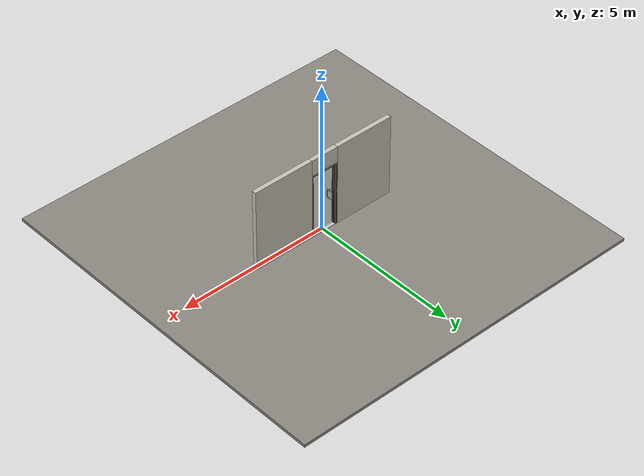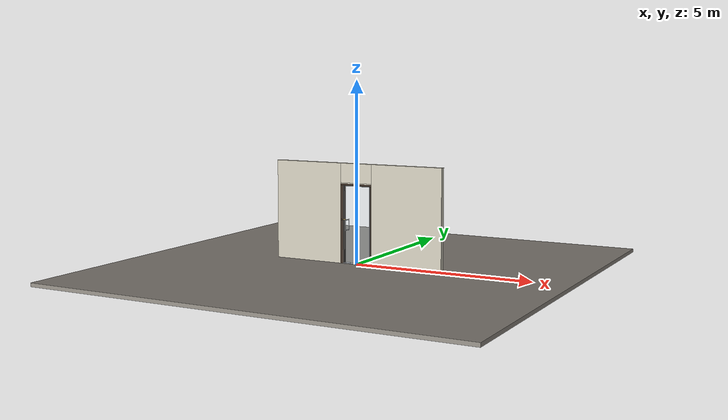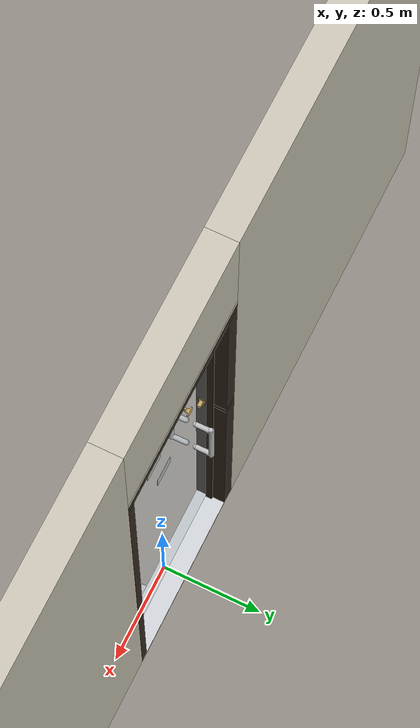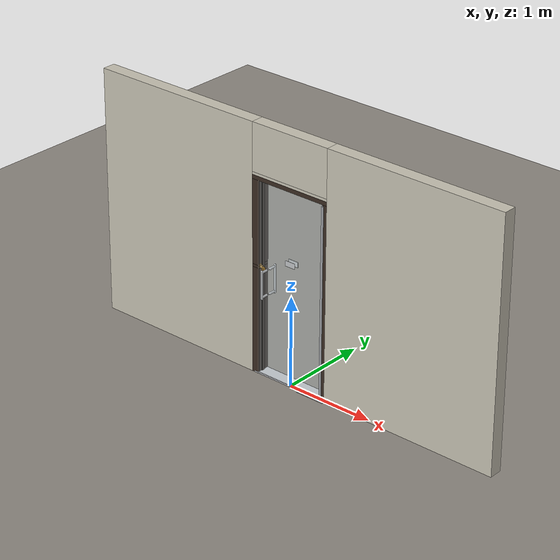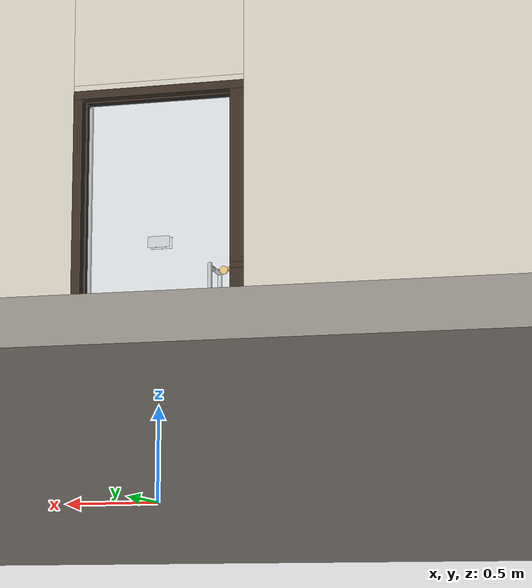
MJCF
<?xml version="1.0" ?>
<mujoco model="db0816_swing_single_full">
  <compiler angle="radian" meshdir="../../hardware" texturedir="../../textures" autolimits="true" inertiafromgeom="false"/>
  <option timestep="0.002" integrator="implicitfast" cone="elliptic" impratio="10" noslip_iterations="3">
    <flag multiccd="enable"/>
  </option>
  <size memory="16M"/>
  <default>
    <geom condim="4" solref="0.005 1" solimp="0.95 0.99 0.001"/>
    <joint solreflimit="0.005 1" solimplimit="0.95 0.99 0.001"/>
    <tendon solreflimit="0.005 1"/>
    <equality solref="0.002 1"/>
  </default>
  <visual>
    <headlight ambient="0.4 0.4 0.4" diffuse="0.7 0.7 0.7" specular="0.2 0.2 0.2"/>
    <quality shadowsize="4096"/>
    <map znear="0.01" zfar="60"/>
  </visual>
  <asset>
    <mesh name="pull_f8d79d6331" file="pull_f8d79d6331.obj"/>
    <mesh name="thumbturn_eb5c9899a3" file="thumbturn_eb5c9899a3.obj"/>
    <material name="mat_floor" rgba="0.55 0.53 0.5 1" specular="0.2" shininess="0.15" reflectance="0"/>
    <material name="mat_wall" rgba="0.78 0.76 0.7 1" specular="0.2" shininess="0.1" reflectance="0"/>
    <material name="mat_leaf" rgba="0.85 0.92 0.95 0.25" specular="0.2" shininess="0.95" reflectance="0.1"/>
    <material name="mat_glass_leaf" rgba="0.85 0.92 0.95 0.25" specular="0.2" shininess="0.95" reflectance="0.1"/>
    <material name="mat_patch" rgba="0.75 0.76 0.77 1" specular="0.8" shininess="0.65" reflectance="0.4"/>
    <material name="mat_hinge" rgba="0.65 0.66 0.68 1" specular="0.74" shininess="0.5" reflectance="0.36"/>
    <material name="mat_op_stainless" rgba="0.75 0.76 0.77 1" specular="0.8" shininess="0.65" reflectance="0.4"/>
    <material name="mat_deadbolt" rgba="0.85 0.66 0.3 1" specular="0.8" shininess="0.75" reflectance="0.4"/>
    <material name="mat_frame" rgba="0.22 0.17 0.13 1" specular="0.8" shininess="0.6" reflectance="0.4"/>
    <material name="mat_seal" rgba="0.1 0.1 0.1 1" specular="0.2" shininess="0.1" reflectance="0"/>
    <material name="mat_threshold" rgba="0.8 0.81 0.83 1" specular="0.8" shininess="0.6" reflectance="0.4"/>
    <material name="mat_closer" rgba="0.75 0.76 0.77 1" specular="0.8" shininess="0.65" reflectance="0.4"/>
    <material name="mat_sign" rgba="0.75 0.76 0.77 1" specular="0.8" shininess="0.65" reflectance="0.4"/>
    <texture name="skybox" type="skybox" builtin="gradient" rgb1="0.6 0.7 0.85" rgb2="0.9 0.92 0.95" width="256" height="256"/>
  </asset>
  <worldbody>
    <light name="sun" pos="1.5 -2.5 4" dir="-0.3 0.5 -0.8" directional="true" diffuse="0.8 0.8 0.8" specular="0.3 0.3 0.3" castshadow="true"/>
    <light name="fill" pos="-1.5 2.5 3" dir="0.3 -0.5 -0.7" directional="true" diffuse="0.35 0.35 0.4" castshadow="false"/>
    <camera name="robot_view" pos="0 -2.594812 1.812087" xyaxes="1 0 0 0 0.26963 0.962964" fovy="52"/>
    <camera name="far_view" pos="0 2.680813 1.812087" xyaxes="-1 0 0 0 -0.26963 0.962964" fovy="52"/>
    <camera name="iso" pos="-2.004737 -2.172762 2.234138" xyaxes="0.741536 -0.670913 0 0.242917 0.268487 0.932151" fovy="46"/>
    <camera name="detail_handle" pos="-0.1205 -0.8975 1.347" xyaxes="0.97561 0.219512 0 -0.070934 0.315262 0.94635" fovy="38"/>
    <geom name="floor" type="box" size="6 6 0.05" pos="0 0 -0.05" material="mat_floor" group="0" contype="1" conaffinity="1" friction="0.8 0.005 0.0001" density="2400"/>
    <geom name="wall_left" type="box" size="1.00725 0.0725 1.3735" pos="-1.49275 0.043 1.3735" material="mat_wall" group="0" contype="1" conaffinity="1" friction="0.6 0.005 0.0001" density="800"/>
    <geom name="wall_right" type="box" size="1.02225 0.0725 1.3735" pos="1.47775 0.043 1.3735" material="mat_wall" group="0" contype="1" conaffinity="1" friction="0.6 0.005 0.0001" density="800"/>
    <geom name="wall_header" type="box" size="0.4705 0.0725 0.2625" pos="-0.015 0.043 2.4845" material="mat_wall" group="0" contype="1" conaffinity="1" friction="0.6 0.005 0.0001" density="800"/>
    <geom name="leaf_deadbolt_strike_b" type="box" size="0.0155 0.003 0.0005" pos="-0.41 0 1.1885" quat="0.5 0.5 0.5 0.5" material="mat_deadbolt" group="1" contype="0" conaffinity="0" density="7800"/>
    <geom name="leaf_deadbolt_strike_l" type="box" size="0.003 0.0155 0.0005" pos="-0.41 -0.0125 1.207" quat="0.5 0.5 0.5 0.5" material="mat_deadbolt" group="1" contype="0" conaffinity="0" density="7800"/>
    <geom name="leaf_deadbolt_strike_t" type="box" size="0.0155 0.003 0.0005" pos="-0.41 0 1.2255" quat="0.5 0.5 0.5 0.5" material="mat_deadbolt" group="1" contype="0" conaffinity="0" density="7800"/>
    <geom name="leaf_deadbolt_strike_r" type="box" size="0.003 0.0155 0.0005" pos="-0.41 0.0125 1.207" quat="0.5 0.5 0.5 0.5" material="mat_deadbolt" group="1" contype="0" conaffinity="0" density="7800"/>
    <geom name="jamb_hinge" type="box" size="0.0225 0.0725 1.0735" pos="0.433 0.043 1.0735" material="mat_frame" group="0" contype="1" conaffinity="1" friction="0.6 0.005 0.0001" density="300"/>
    <geom name="strike_1207_wall_n" type="box" size="0.0375 0.053 0.0155" pos="-0.448 0.0625 1.207" material="mat_frame" group="0" contype="1" conaffinity="1" friction="0.6 0.005 0.0001" density="300"/>
    <geom name="strike_1207_wall_p" type="box" size="0.0375 0.01 0.0155" pos="-0.448 -0.0195 1.207" material="mat_frame" group="0" contype="1" conaffinity="1" friction="0.6 0.005 0.0001" density="300"/>
    <geom name="strike_1207_back" type="box" size="0.0228 0.0095 0.0155" pos="-0.4627 0 1.207" material="mat_frame" group="0" contype="1" conaffinity="1" friction="0.6 0.005 0.0001" density="300"/>
    <geom name="jamb_strike_0" type="box" size="0.0375 0.0725 0.59575" pos="-0.448 0.043 0.59575" material="mat_frame" group="0" contype="1" conaffinity="1" friction="0.6 0.005 0.0001" density="300"/>
    <geom name="jamb_strike_1" type="box" size="0.0375 0.0725 0.46225" pos="-0.448 0.043 1.68475" material="mat_frame" group="0" contype="1" conaffinity="1" friction="0.6 0.005 0.0001" density="300"/>
    <geom name="jamb_head" type="box" size="0.4705 0.0725 0.0225" pos="-0.015 0.043 2.1695" material="mat_frame" group="0" contype="1" conaffinity="1" friction="0.6 0.005 0.0001" density="300"/>
    <geom name="head_stud" type="box" size="0.4705 0.0725 0.015" pos="-0.015 0.043 2.207" material="mat_wall" group="0" contype="1" conaffinity="1" friction="0.6 0.005 0.0001" density="500"/>
    <geom name="stop_hinge" type="box" size="0.0055 0.016 1.0735" pos="0.405 0.039 1.0735" material="mat_frame" group="0" contype="1" conaffinity="1" friction="0.6 0.005 0.0001" density="300"/>
    <geom name="stop_strike" type="box" size="0.0055 0.016 1.0735" pos="-0.405 0.039 1.0735" material="mat_frame" group="0" contype="1" conaffinity="1" friction="0.6 0.005 0.0001" density="300"/>
    <geom name="stop_head" type="box" size="0.4105 0.016 0.0055" pos="0 0.039 2.1415" material="mat_frame" group="0" contype="1" conaffinity="1" friction="0.6 0.005 0.0001" density="300"/>
    <geom name="seal_hinge" type="box" size="0.004 0.002 1.0735" pos="0.4075 0.0245 1.0735" material="mat_seal" group="1" contype="0" conaffinity="0" density="1100"/>
    <geom name="seal_strike" type="box" size="0.004 0.002 1.0735" pos="-0.4075 0.0245 1.0735" material="mat_seal" group="1" contype="0" conaffinity="0" density="1100"/>
    <geom name="seal_head" type="box" size="0.3905 0.002 0.008" pos="0 0.0245 2.135" material="mat_seal" group="1" contype="0" conaffinity="0" density="1100"/>
    <geom name="threshold" type="box" size="0.4555 0.0725 0.0065" pos="0 0.043 0.0065" material="mat_threshold" group="0" contype="1" conaffinity="1" friction="0.5 0.005 0.0001" density="2700"/>
    <geom name="floor_spring_cover" type="box" size="0.17 0.06 0.002" pos="0.2905 0 0.002" material="mat_closer" group="1" contype="0" conaffinity="0" density="7900"/>
    <site name="approach_point" pos="0 -1.5 0" quat="1 0 0 0" size="0.05" rgba="0.2 0.9 0.2 0.5" group="4"/>
    <site name="goal_point" pos="0 1.5 0" quat="1 0 0 0" size="0.05" rgba="0.2 0.9 0.2 0.5" group="4"/>
    <site name="door_plane_center" pos="0 0 1.0735" quat="1 0 0 0" size="0.02" rgba="0.2 0.9 0.2 0.5" group="4"/>
    <body name="leaf" pos="0.4105 0 0">
      <inertial pos="-0.400927 -0.001328 1.080498" mass="88.081347" quat="0.50227 0.497904 -0.502085 0.497722" diaginertia="5.410505238 32.063966319 37.394522179"/>
      <joint name="leaf_hinge" type="hinge" axis="0 0 1" pos="-0.003 -0.0295 0" limited="true" range="0 1.832596" solreflimit="0.02 1" damping="8.168374" frictionloss="1.966204" stiffness="17.118706" springref="-2.550426" armature="0.02"/>
      <geom name="leaf_glass" type="box" size="0.4065 0.0225 1.063" pos="-0.4095 0 1.08" material="mat_glass_leaf" group="0" contype="1" conaffinity="1" friction="0.4 0.005 0.0001" density="1"/>
      <geom name="hinge_continuous" type="cylinder" size="0.0136 1.053" pos="-0.003 -0.0295 1.08" material="mat_hinge" group="1" contype="0" conaffinity="0" density="2700"/>
      <geom name="leaf_pull_n" type="mesh" mesh="pull_f8d79d6331" pos="-0.711 -0.0225 1.067" quat="0 0 -0.707107 0.707107" material="mat_op_stainless" group="1" contype="0" conaffinity="0" density="3000"/>
      <geom name="leaf_pull_col_n" type="capsule" size="0.0125 0.13" pos="-0.711 -0.0975 1.067" material="mat_op_stainless" group="3" contype="1" conaffinity="1" rgba="0.8 0.3 0.3 0.25" friction="0.7 0.01 0.0001" density="3000"/>
      <geom name="leaf_pull_p" type="mesh" mesh="pull_f8d79d6331" pos="-0.711 0.0225 1.067" quat="0 0 0.707107 0.707107" material="mat_op_stainless" group="1" contype="0" conaffinity="0" density="3000"/>
      <geom name="leaf_pull_col_p" type="capsule" size="0.0125 0.13" pos="-0.711 0.0975 1.067" material="mat_op_stainless" group="3" contype="1" conaffinity="1" rgba="0.8 0.3 0.3 0.25" friction="0.7 0.01 0.0001" density="3000"/>
      <geom name="leaf_deadbolt_faceplate" type="box" size="0.0006 0.014 0.0245" pos="-0.8154 0 1.207" material="mat_deadbolt" group="1" contype="0" conaffinity="0" density="8500"/>
      <geom name="sign_push" type="box" size="0.06 0.001 0.03" pos="-0.4095 0.0235 1.367" material="mat_sign" group="2" contype="0" conaffinity="0" density="7900"/>
      <geom name="sign_pull" type="box" size="0.06 0.001 0.03" pos="-0.4095 -0.0235 1.367" material="mat_sign" group="2" contype="0" conaffinity="0" density="7900"/>
      <site name="leaf_pull_grip_n" pos="-0.711 -0.0975 1.067" quat="1 0 0 0" size="0.012" rgba="0.2 0.9 0.2 0.5" group="4"/>
      <site name="leaf_pull_grip_p" pos="-0.711 0.0975 1.067" quat="1 0 0 0" size="0.012" rgba="0.2 0.9 0.2 0.5" group="4"/>
      <site name="leaf_edge_mid" pos="-0.816 0 1.063" quat="1 0 0 0" size="0.02" rgba="0.2 0.9 0.2 0.5" group="4"/>
      <body name="leaf_deadbolt" pos="-0.816 0 1.207">
        <inertial pos="0.0023 0 0" mass="0.18836" quat="0 0 0.707107 0.707107" diaginertia="0.000013829 0.000052194 0.000057986"/>
        <joint name="leaf_deadbolt_slide" type="slide" axis="1 0 0" limited="true" range="0 0.0254" damping="5" frictionloss="1.5" armature="0.1"/>
        <geom name="leaf_deadbolt_box" type="box" size="0.0277 0.008 0.0125" pos="0.0023 0 0" material="mat_deadbolt" group="0" contype="1" conaffinity="1" friction="0.3 0.005 0.0001" density="8500"/>
      </body>
      <body name="leaf_deadbolt_thumbturn" pos="-0.751 -0.0225 1.207">
        <inertial pos="0 -0.012928 0" mass="0.178946" quat="0.5 0.5 0.5 0.5" diaginertia="0.000026045 0.000026215 0.000032438"/>
        <joint name="leaf_deadbolt_thumbturn_hinge" type="hinge" axis="0 1 0" limited="true" range="0 1.5708" damping="0.05" frictionloss="0.3" armature="0.005"/>
        <geom name="leaf_deadbolt_thumbturn_mesh" type="mesh" mesh="thumbturn_eb5c9899a3" pos="0 0 0" quat="0 0 -0.707107 0.707107" material="mat_deadbolt" group="0" contype="1" conaffinity="1" friction="0.6 0.005 0.0001" density="7100"/>
        <geom name="leaf_deadbolt_thumbturn_col" type="box" size="0.006 0.012 0.016" pos="0 -0.02 0" material="mat_deadbolt" group="3" contype="1" conaffinity="1" rgba="0.8 0.3 0.3 0.25" friction="0.6 0.005 0.0001" density="7100"/>
      </body>
    </body>
  </worldbody>
  <equality>
    <joint name="leaf_deadbolt_couple" joint1="leaf_deadbolt_slide" joint2="leaf_deadbolt_thumbturn_hinge" polycoef="0 0.01617 0 0 0" active="true"/>
  </equality>
  <contact>
    <exclude body1="leaf_deadbolt" body2="leaf_deadbolt_thumbturn"/>
  </contact>
  <sensor>
    <jointpos name="leaf_hinge_pos" joint="leaf_hinge"/>
    <jointvel name="leaf_hinge_vel" joint="leaf_hinge"/>
    <jointpos name="leaf_deadbolt_slide_pos" joint="leaf_deadbolt_slide"/>
    <jointvel name="leaf_deadbolt_slide_vel" joint="leaf_deadbolt_slide"/>
    <jointpos name="leaf_deadbolt_thumbturn_hinge_pos" joint="leaf_deadbolt_thumbturn_hinge"/>
    <jointvel name="leaf_deadbolt_thumbturn_hinge_vel" joint="leaf_deadbolt_thumbturn_hinge"/>
  </sensor>
</mujoco>
